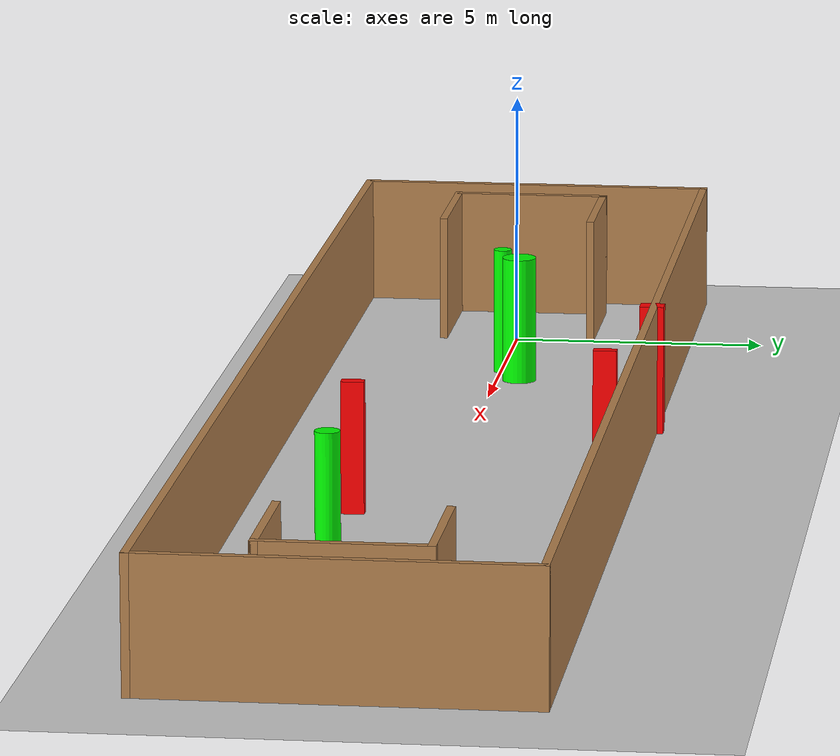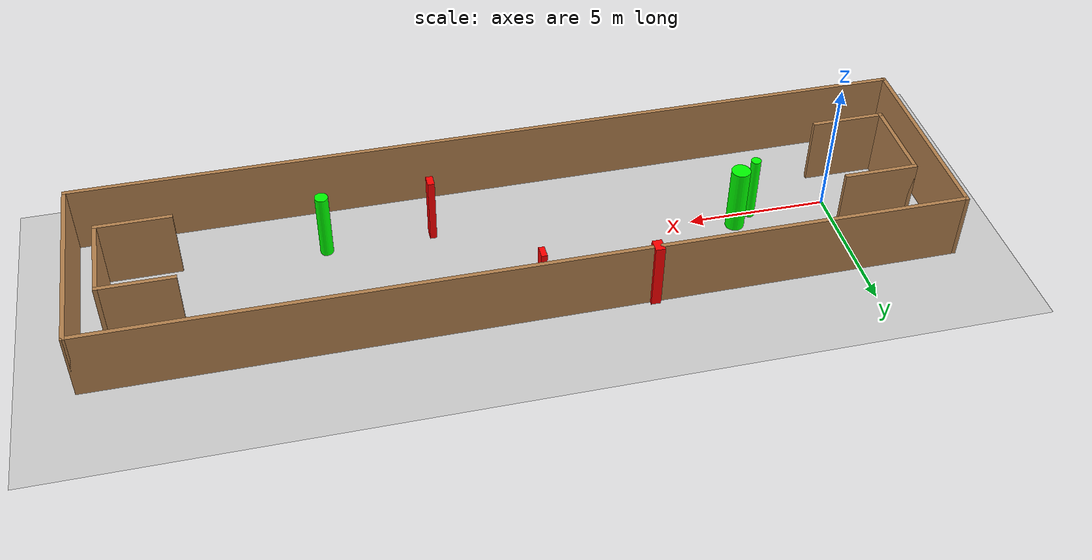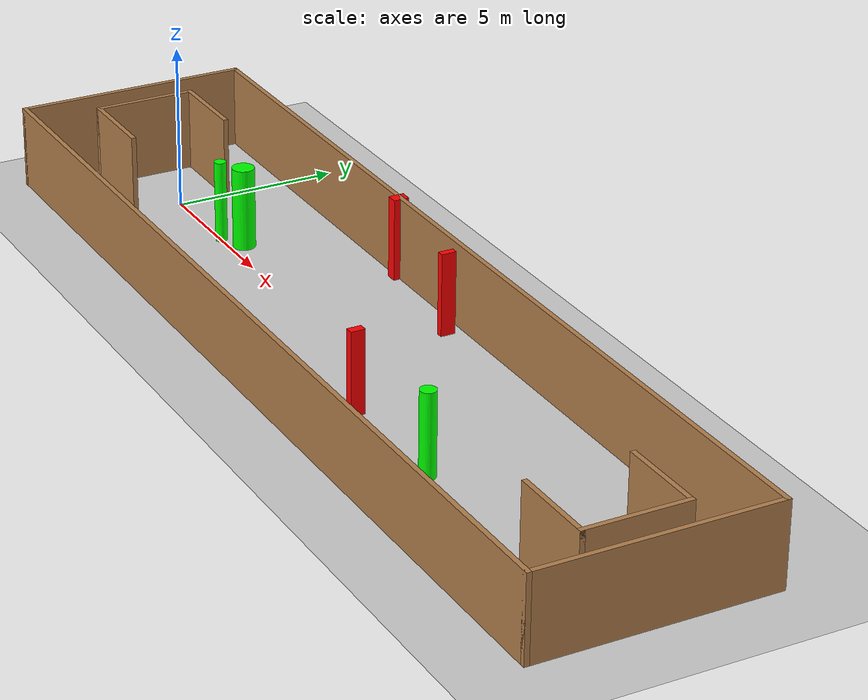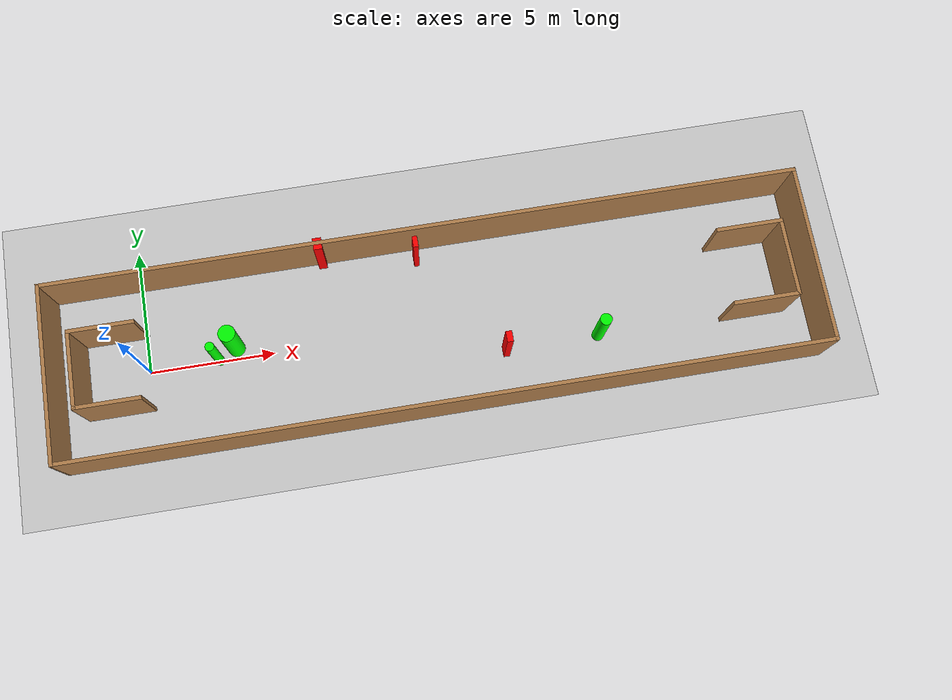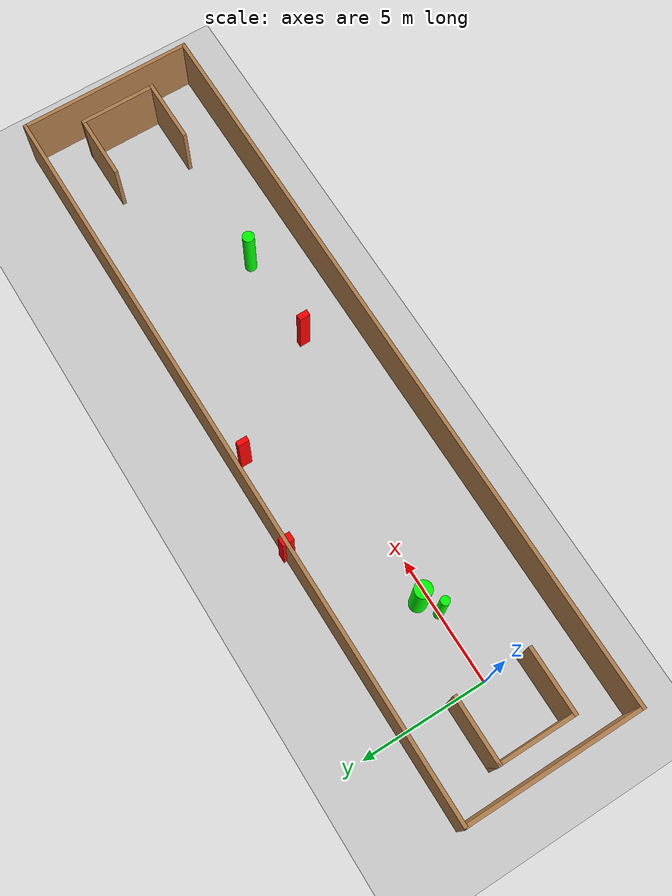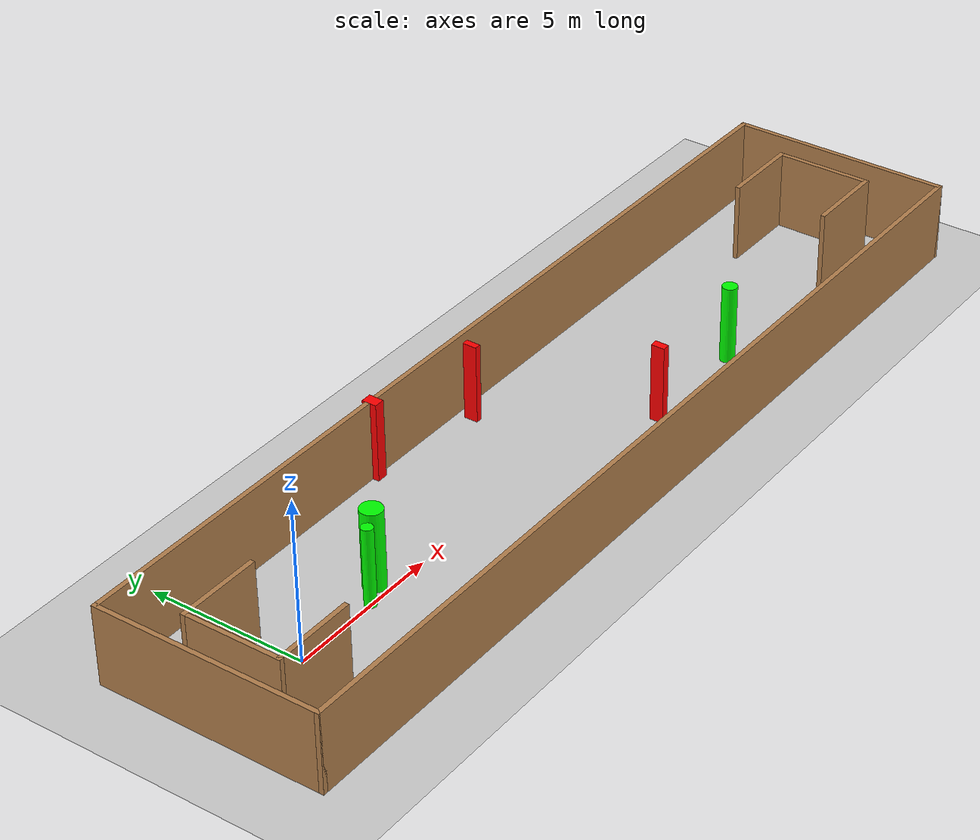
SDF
<sdf version="1.7">
 <world name="default">
  <light name="sun" type="directional">
   <pose>0 0 10 0 -0 0</pose>
   <diffuse>0.8 0.8 0.8 1</diffuse>
   <specular>0.2 0.2 0.2 1</specular>
   <attenuation>
    <range>1000</range>
    <constant>0.9</constant>
    <linear>0.01</linear>
    <quadratic>0.001</quadratic>
   </attenuation>
   <direction>-0.5 0.1 -0.9</direction>
   <spot><inner_angle>0</inner_angle><outer_angle>0</outer_angle><falloff>0</falloff></spot>
  </light>
  <model name="ground_plane">
   <static>1</static>
   <link name="link">
    <collision name="collision">
     <geometry><plane><normal>0 0 1</normal><size>100 100</size></plane></geometry>
     <surface>
      <contact><collide_bitmask>65535</collide_bitmask></contact>
      <friction><ode><mu>100</mu><mu2>50</mu2></ode></friction>
     </surface>
    </collision>
    <visual name="visual">
     <cast_shadows>0</cast_shadows>
     <geometry><plane><normal>0 0 1</normal><size>100 100</size></plane></geometry>
     <material>
      <script><uri>file://media/materials/scripts/gazebo.material</uri><name>Gazebo/Grey</name></script>
     </material>
    </visual>
   </link>
  </model>
  <gravity>0 0 -9.8</gravity>
  <magnetic_field>6e-06 2.3e-05 -4.2e-05</magnetic_field>
  <atmosphere type="adiabatic"/>
  <physics type="ode">
   <max_step_size>0.001</max_step_size>
   <real_time_factor>1</real_time_factor>
   <real_time_update_rate>1000</real_time_update_rate>
  </physics>
  <scene><ambient>0.4 0.4 0.4 1</ambient><background>0.7 0.7 0.7 1</background><shadows>1</shadows></scene>
  <spherical_coordinates>
   <surface_model>EARTH_WGS84</surface_model>
   <latitude_deg>0</latitude_deg>
   <longitude_deg>0</longitude_deg>
   <elevation>0</elevation>
   <heading_deg>0</heading_deg>
  </spherical_coordinates>
  <model name="my_base_walls">
   <link name="Wall_0">
    <collision name="Wall_0_Collision">
     <geometry><box><size>7.15 0.15 2.5</size></box></geometry>
     <pose>0 0 1.25 0 -0 0</pose>
    </collision>
    <visual name="Wall_0_Visual">
     <pose>0 0 1.25 0 -0 0</pose>
     <geometry><box><size>7.15 0.15 2.5</size></box></geometry>
     <material>
      <script><uri>file://media/materials/scripts/gazebo.material</uri><name>Gazebo/Wood</name></script>
      <ambient>1 1 1 1</ambient>
     </material>
     <meta><layer>0</layer></meta>
    </visual>
    <pose>-15 0 0 0 -0 1.5708</pose>
   </link>
   <link name="Wall_10">
    <collision name="Wall_10_Collision">
     <geometry><box><size>2.65 0.15 2.5</size></box></geometry>
     <pose>0 0 1.25 0 -0 0</pose>
    </collision>
    <visual name="Wall_10_Visual">
     <pose>0 0 1.25 0 -0 0</pose>
     <geometry><box><size>2.65 0.15 2.5</size></box></geometry>
     <material>
      <script><uri>file://media/materials/scripts/gazebo.material</uri><name>Gazebo/Wood</name></script>
      <ambient>1 1 1 1</ambient>
     </material>
     <meta><layer>0</layer></meta>
    </visual>
    <pose>-12.75 -1.5 0 0 -0 0</pose>
   </link>
   <link name="Wall_12">
    <collision name="Wall_12_Collision">
     <geometry><box><size>2.65 0.15 2.5</size></box></geometry>
     <pose>0 0 1.25 0 -0 0</pose>
    </collision>
    <visual name="Wall_12_Visual">
     <pose>0 0 1.25 0 -0 0</pose>
     <geometry><box><size>2.65 0.15 2.5</size></box></geometry>
     <material>
      <script><uri>file://media/materials/scripts/gazebo.material</uri><name>Gazebo/Wood</name></script>
      <ambient>1 1 1 1</ambient>
     </material>
     <meta><layer>0</layer></meta>
    </visual>
    <pose>-12.75 1.5 0 0 -0 0</pose>
   </link>
   <link name="Wall_14">
    <collision name="Wall_14_Collision">
     <geometry><box><size>3.15 0.15 2.5</size></box></geometry>
     <pose>0 0 1.25 0 -0 0</pose>
    </collision>
    <visual name="Wall_14_Visual">
     <pose>0 0 1.25 0 -0 0</pose>
     <geometry><box><size>3.15 0.15 2.5</size></box></geometry>
     <material>
      <script><uri>file://media/materials/scripts/gazebo.material</uri><name>Gazebo/Wood</name></script>
      <ambient>1 1 1 1</ambient>
     </material>
     <meta><layer>0</layer></meta>
    </visual>
    <pose>14 0 0 0 -0 -1.5708</pose>
   </link>
   <link name="Wall_15">
    <collision name="Wall_15_Collision">
     <geometry><box><size>2.65 0.15 2.5</size></box></geometry>
     <pose>0 0 1.25 0 -0 0</pose>
    </collision>
    <visual name="Wall_15_Visual">
     <pose>0 0 1.25 0 -0 0</pose>
     <geometry><box><size>2.65 0.15 2.5</size></box></geometry>
     <material>
      <script><uri>file://media/materials/scripts/gazebo.material</uri><name>Gazebo/Wood</name></script>
      <ambient>1 1 1 1</ambient>
     </material>
     <meta><layer>0</layer></meta>
    </visual>
    <pose>12.75 -1.5 0 0 -0 3.14159</pose>
   </link>
   <link name="Wall_17">
    <collision name="Wall_17_Collision">
     <geometry><box><size>2.65 0.15 2.5</size></box></geometry>
     <pose>0 0 1.25 0 -0 0</pose>
    </collision>
    <visual name="Wall_17_Visual">
     <pose>0 0 1.25 0 -0 0</pose>
     <geometry><box><size>2.65 0.15 2.5</size></box></geometry>
     <material>
      <script><uri>file://media/materials/scripts/gazebo.material</uri><name>Gazebo/Wood</name></script>
      <ambient>1 1 1 1</ambient>
     </material>
     <meta><layer>0</layer></meta>
    </visual>
    <pose>12.75 1.5 0 0 -0 3.14159</pose>
   </link>
   <link name="Wall_2">
    <collision name="Wall_2_Collision">
     <geometry><box><size>30.15 0.15 2.5</size></box></geometry>
     <pose>0 0 1.25 0 -0 0</pose>
    </collision>
    <visual name="Wall_2_Visual">
     <pose>0 0 1.25 0 -0 0</pose>
     <geometry><box><size>30.15 0.15 2.5</size></box></geometry>
     <material>
      <script><uri>file://media/materials/scripts/gazebo.material</uri><name>Gazebo/Wood</name></script>
      <ambient>1 1 1 1</ambient>
     </material>
     <meta><layer>0</layer></meta>
    </visual>
    <pose>-0 -3.5 0 0 -0 0</pose>
   </link>
   <link name="Wall_4">
    <collision name="Wall_4_Collision">
     <geometry><box><size>30.15 0.15 2.5</size></box></geometry>
     <pose>0 0 1.25 0 -0 0</pose>
    </collision>
    <visual name="Wall_4_Visual">
     <pose>0 0 1.25 0 -0 0</pose>
     <geometry><box><size>30.15 0.15 2.5</size></box></geometry>
     <material>
      <script><uri>file://media/materials/scripts/gazebo.material</uri><name>Gazebo/Wood</name></script>
      <ambient>1 1 1 1</ambient>
     </material>
     <meta><layer>0</layer></meta>
    </visual>
    <pose>-0 3.5 0 0 -0 0</pose>
   </link>
   <link name="Wall_6">
    <collision name="Wall_6_Collision">
     <geometry><box><size>7.15 0.15 2.5</size></box></geometry>
     <pose>0 0 1.25 0 -0 0</pose>
    </collision>
    <visual name="Wall_6_Visual">
     <pose>0 0 1.25 0 -0 0</pose>
     <geometry><box><size>7.15 0.15 2.5</size></box></geometry>
     <material>
      <script><uri>file://media/materials/scripts/gazebo.material</uri><name>Gazebo/Wood</name></script>
      <ambient>1 1 1 1</ambient>
     </material>
     <meta><layer>0</layer></meta>
    </visual>
    <pose>15 0 0 0 -0 -1.5708</pose>
   </link>
   <link name="Wall_9">
    <collision name="Wall_9_Collision">
     <geometry><box><size>3.15 0.15 2.5</size></box></geometry>
     <pose>0 0 1.25 0 -0 0</pose>
    </collision>
    <visual name="Wall_9_Visual">
     <pose>0 0 1.25 0 -0 0</pose>
     <geometry><box><size>3.15 0.15 2.5</size></box></geometry>
     <material>
      <script><uri>file://media/materials/scripts/gazebo.material</uri><name>Gazebo/Wood</name></script>
      <ambient>1 1 1 1</ambient>
     </material>
     <meta><layer>0</layer></meta>
    </visual>
    <pose>-14 0 0 0 -0 -1.5708</pose>
   </link>
   <static>1</static>
   <pose>11.5 0 0 0 -0 0</pose>
  </model>
  <model name="cylinder1">
   <static>1</static>
   <link name="link">
    <inertial>
     <mass>1</mass>
     <inertia><ixx>0.5</ixx><ixy>0</ixy><ixz>0</ixz><iyy>0.5</iyy><iyz>0</iyz><izz>1</izz></inertia>
    </inertial>
    <collision name="collision">
     <geometry><cylinder><radius>0.33660605129230803</radius><length>2.5</length></cylinder></geometry>
    </collision>
    <visual name="visual">
     <geometry><cylinder><radius>0.33660605129230803</radius><length>2.5</length></cylinder></geometry>
     <material>
      <ambient>0 1 0 1</ambient>
      <diffuse>0 1 0 1</diffuse>
      <specular>0.1 0.1 0.1 1</specular>
      <emissive>0 0 0 0</emissive>
     </material>
    </visual>
   </link>
   <pose>3.5068131573765253 0.44177275749929823 1.25 0 0 0</pose>
  </model>
  <model name="cylinder2">
   <static>1</static>
   <link name="link">
    <inertial>
     <mass>1</mass>
     <inertia><ixx>0.5</ixx><ixy>0</ixy><ixz>0</ixz><iyy>0.5</iyy><iyz>0</iyz><izz>1</izz></inertia>
    </inertial>
    <collision name="collision">
     <geometry><cylinder><radius>0.23285667112052866</radius><length>2.5</length></cylinder></geometry>
    </collision>
    <visual name="visual">
     <geometry><cylinder><radius>0.23285667112052866</radius><length>2.5</length></cylinder></geometry>
     <material>
      <ambient>0 1 0 1</ambient>
      <diffuse>0 1 0 1</diffuse>
      <specular>0.1 0.1 0.1 1</specular>
      <emissive>0 0 0 0</emissive>
     </material>
    </visual>
   </link>
   <pose>17.943574905859126 -1.3401946346583231 1.25 0 0 0</pose>
  </model>
  <model name="cylinder3">
   <static>1</static>
   <link name="link">
    <inertial>
     <mass>1</mass>
     <inertia><ixx>0.5</ixx><ixy>0</ixy><ixz>0</ixz><iyy>0.5</iyy><iyz>0</iyz><izz>1</izz></inertia>
    </inertial>
    <collision name="collision">
     <geometry><cylinder><radius>0.17845318559270426</radius><length>2.5</length></cylinder></geometry>
    </collision>
    <visual name="visual">
     <geometry><cylinder><radius>0.17845318559270426</radius><length>2.5</length></cylinder></geometry>
     <material>
      <ambient>0 1 0 1</ambient>
      <diffuse>0 1 0 1</diffuse>
      <specular>0.1 0.1 0.1 1</specular>
      <emissive>0 0 0 0</emissive>
     </material>
    </visual>
   </link>
   <pose>2.8089849485248433 0.03126911783938402 1.25 0 0 0</pose>
  </model>
  <model name="box1">
   <static>1</static>
   <link name="link">
    <inertial>
     <mass>1</mass>
     <inertia><ixx>0.083</ixx><ixy>0</ixy><ixz>0</ixz><iyy>0.083</iyy><iyz>0</iyz><izz>0.083</izz></inertia>
    </inertial>
    <collision name="collision">
     <geometry><box><size>0.24390046045726588 0.42802877836179853 2.5</size></box></geometry>
    </collision>
    <visual name="visual">
     <geometry><box><size>0.24390046045726588 0.42802877836179853 2.5</size></box></geometry>
     <material>
      <ambient>1 0 0 1</ambient>
      <diffuse>1 0 0 1</diffuse>
      <specular>0.1 0.1 0.1 1</specular>
      <emissive>0 0 0 0</emissive>
     </material>
    </visual>
    <sensor name="my_contact" type="contact">
     <contact><collision>box_collision</collision><topic>__default_topic__</topic></contact>
    </sensor>
   </link>
   <pose>14.167486107412419 -1.4080122466727838 1.25 0 0 0</pose>
  </model>
  <model name="box2">
   <static>1</static>
   <link name="link">
    <inertial>
     <mass>1</mass>
     <inertia><ixx>0.083</ixx><ixy>0</ixy><ixz>0</ixz><iyy>0.083</iyy><iyz>0</iyz><izz>0.083</izz></inertia>
    </inertial>
    <collision name="collision">
     <geometry><box><size>0.20520699871491987 0.44494175895347404 2.5</size></box></geometry>
    </collision>
    <visual name="visual">
     <geometry><box><size>0.20520699871491987 0.44494175895347404 2.5</size></box></geometry>
     <material>
      <ambient>1 0 0 1</ambient>
      <diffuse>1 0 0 1</diffuse>
      <specular>0.1 0.1 0.1 1</specular>
      <emissive>0 0 0 0</emissive>
     </material>
    </visual>
    <sensor name="my_contact" type="contact">
     <contact><collision>box_collision</collision><topic>__default_topic__</topic></contact>
    </sensor>
   </link>
   <pose>11.201196895730146 2.9343853706055603 1.25 0 0 0</pose>
  </model>
  <model name="box3">
   <static>1</static>
   <link name="link">
    <inertial>
     <mass>1</mass>
     <inertia><ixx>0.083</ixx><ixy>0</ixy><ixz>0</ixz><iyy>0.083</iyy><iyz>0</iyz><izz>0.083</izz></inertia>
    </inertial>
    <collision name="collision">
     <geometry><box><size>0.33857404726841084 0.4649263766969591 2.5</size></box></geometry>
    </collision>
    <visual name="visual">
     <geometry><box><size>0.33857404726841084 0.4649263766969591 2.5</size></box></geometry>
     <material>
      <ambient>1 0 0 1</ambient>
      <diffuse>1 0 0 1</diffuse>
      <specular>0.1 0.1 0.1 1</specular>
      <emissive>0 0 0 0</emissive>
     </material>
    </visual>
    <sensor name="my_contact" type="contact">
     <contact><collision>box_collision</collision><topic>__default_topic__</topic></contact>
    </sensor>
   </link>
   <pose>7.4141102755776345 3.4598319577861165 1.25 0 0 0</pose>
  </model>
 </world>
</sdf>
